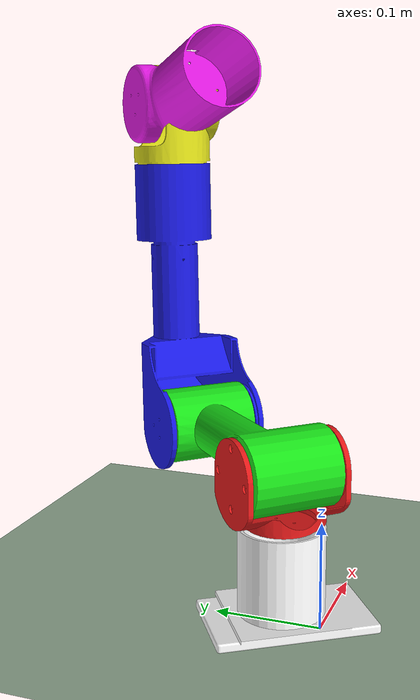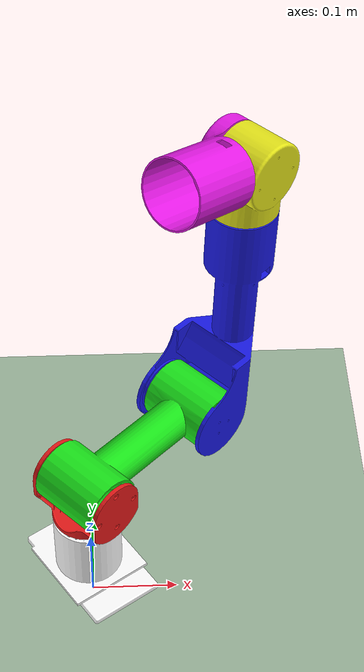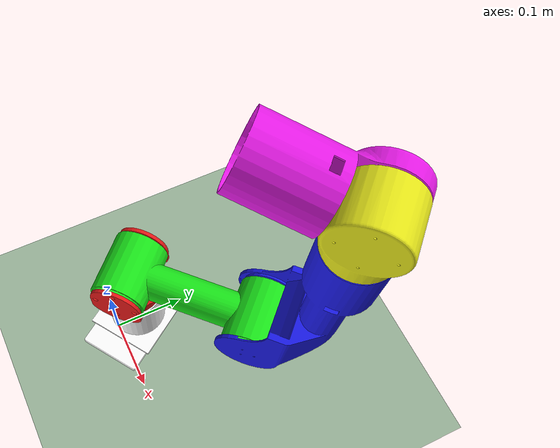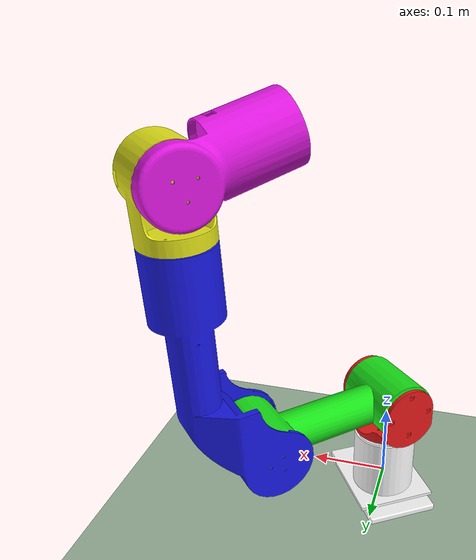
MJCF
<?xml version="1.0" encoding="utf-8"?>
<mujoco model="URDF">
  <compiler angle="radian" meshdir="meshes"/>

  <option gravity="0 0 -9.81"/>

  <default>
    <geom friction="1 0.005 0.0001"/>
    <joint damping="4.0" frictionloss="0.2"/>
  </default>

  <asset>
    <mesh name="base_link" file="base_link.STL"/>
    <mesh name="Empty_Link1" file="Empty_Link1.STL"/>
    <mesh name="Empty_Link2" file="Empty_Link2.STL"/>
    <mesh name="Empty_Link3" file="Empty_Link3.STL"/>
    <mesh name="Empty_Link4" file="Empty_Link4.STL"/>
    <mesh name="Empty_Link5" file="Empty_Link5.STL"/>
  </asset>

  <worldbody>
    <light diffuse=".5 .5 .5" pos="0 0 3" dir="0 0 -1"/>
    <geom name="ground" type="plane" size="2 2 0.1" rgba="0.6 0.7 0.6 1"/>

    <body name="base_link" pos="0 0 0.04">
      <geom type="mesh" rgba="1 1 1 1" mesh="base_link" pos="0 0 0"/>

      <body name="Empty_Link1" pos="-0.0044519 0.035576 0.061" quat="0.499998 0.5 -0.5 0.500002">
      <inertial pos="0.027875 4.4502e-07 4.2904e-07" quat="0.654203 0.268373 -0.268366 0.654197" mass="0.052202" diaginertia="0.000124706 0.00011158 5.58293e-05"/>
      <joint name="j1" pos="0 0 0" axis="1 0 0" limited="true" range="-3.1416 3.1416" damping="2.0" frictionloss="0.1"/>
      <geom type="mesh" rgba="0.9 0.1 0.1 1" mesh="Empty_Link1"/>

        <body name="Empty_Link2" pos="0.045635 -0.029846 0.030256" quat="0.272823 0.652355 0.652355 -0.272827">
        <inertial pos="0.049821 -0.0016652 0.089461" quat="0.69727 0.00599467 -0.00677463 0.716751" mass="0.13587" diaginertia="0.0010379 0.00102779 0.00015048"/>
        <joint name="j2" pos="0 0 0" axis="1 0 0" limited="true" range="-3.1416 3.1416" damping="8.0" frictionloss="0.5"/>
          <geom type="mesh" rgba="0.1 0.9 0.1 1" mesh="Empty_Link2"/>

          <body name="Empty_Link3" pos="-0.007 -0.0037552 0.17996">
            <inertial pos="0.050129 0.13127 0.058716" quat="0.378739 0.595408 -0.597044 0.381556" mass="0.2167" diaginertia="0.000705103 0.00064012 0.000336517"/>
            <joint name="j3" pos="0 0 0" axis="1 0 0" limited="true" range="-2.0 2.0" damping="8.0" frictionloss="0.5"/>
            <geom type="mesh" rgba="0.1 0.1 0.9 1" mesh="Empty_Link3"/>

            <body name="Empty_Link4" pos="0.05 0.26477 0.078291" quat="0.509772 -0.490031 -0.509775 0.490031">
              <inertial pos="0.042129 0.00021026 0.012017" quat="-0.00801163 0.595904 -6.4154e-05 0.803016" mass="0.054059" diaginertia="0.000105994 9.19652e-05 6.36908e-05"/>
              <joint name="j4" pos="0 0 0" axis="1 0 0" limited="true" range="-2.0 2.0" damping="2.0" frictionloss="0.1"/>
              <geom type="mesh" rgba="0.9 0.9 0.1 1" mesh="Empty_Link4"/>

              <body name="Empty_Link5" pos="0.06 2.165e-05 -0.041" quat="0.509894 -0.489906 -0.509651 -0.490159">
                <inertial pos="0.034857 0.015355 0.057414" quat="0.969756 -0.127071 0.20746 -0.0196474" mass="0.069965" diaginertia="0.000197262 0.000189826 8.47521e-05"/>
                <joint name="j5" pos="0 0 0" axis="1 -4.8552e-05 0" limited="true" range="-2.0 2.0"/>
                <geom type="mesh" rgba="0.9 0.1 0.9 1" mesh="Empty_Link5"/>
              </body>
            </body>
          </body>
        </body>
      </body>
    </body>
  </worldbody>

  <actuator>
    <position joint="j1" name="j1_position" ctrllimited="true" ctrlrange="-3.1416 3.1416" kp="50"/>
    <position joint="j2" name="j2_position" ctrllimited="true" ctrlrange="-3.1416 3.1416" kp="50"/>
    <position joint="j3" name="j3_position" ctrllimited="true" ctrlrange="-2.0 2.0" kp="50"/>
    <position joint="j4" name="j4_position" ctrllimited="true" ctrlrange="-2.0 2.0" kp="50"/>
    <position joint="j5" name="j5_position" ctrllimited="true" ctrlrange="-2.0 2.0" kp="50"/>
  </actuator>

</mujoco>
